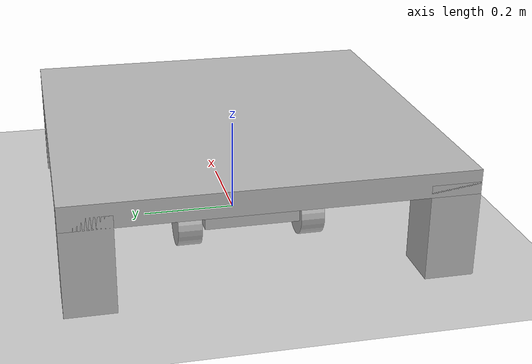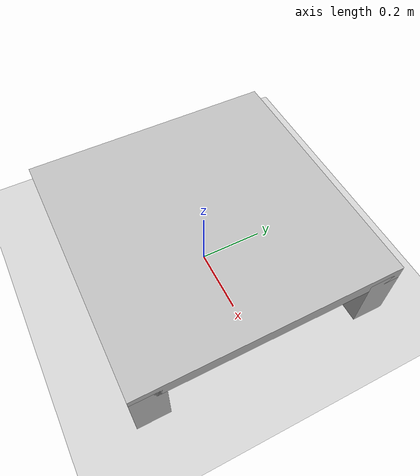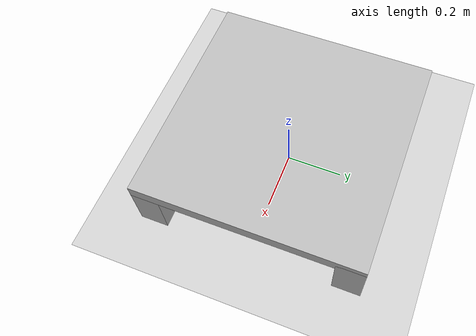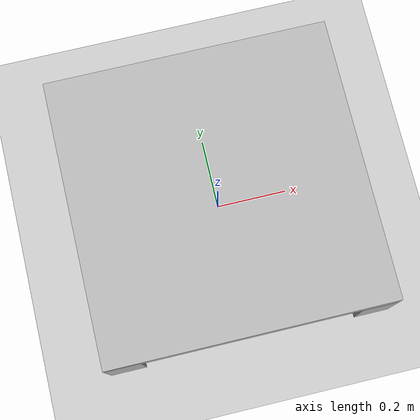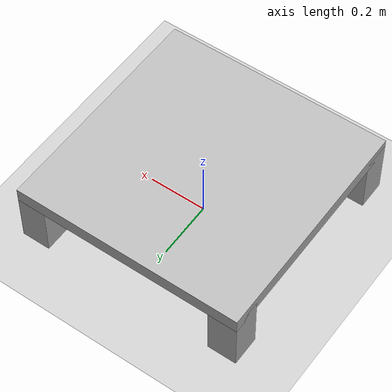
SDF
<?xml version="1.0" ?>
<sdf version="1.5">
	<world name="warehouse">

	<!-- A global light source -->
		<include>
			<uri>model://sun</uri>
		</include>
		<!-- A ground plane -->
		<include>
			<uri>model://ground_plane</uri>
		</include>

		<model name="shelf">
			<link name='body'>
           		<pose>0 0 0.2 0 0 0</pose>
		        <collision name='collision'>
		         	<geometry>
		           		<box>
		              		<size>.8 .8 .05</size>
		            		</box>
		          	</geometry>
		        	</collision>

		        <visual name='visual'>
		        		<geometry>
		            		<box>
		              		<size>.8 .8 .05</size>
		            		</box>
		          	</geometry>
		        </visual>
			</link>
			<link name="leg_1">
            <pose>0.35 0.35 0.1 0 0 0</pose>
		        <collision name='collision'>
		         	<geometry>
		           		<box>
		              		<size>.1 .1 0.20</size>
		            		</box>
		          	</geometry>
		        	</collision>
		        <visual name='visual'>
		        		<geometry>
		            		<box>
		              		<size>.1 .1 0.20</size>
		            		</box>
		          	</geometry>
		        </visual>
			</link>
            <link name="leg_2">
            <pose>-0.35 0.35 0.1 0 0 0</pose>
		        <collision name='collision'>
		         	<geometry>
		           		<box>
		              		<size>.1 .1 0.20</size>
		            		</box>
		          	</geometry>
		        	</collision>

		        <visual name='visual'>
		        		<geometry>
		            		<box>
		              		<size>.1 .1 0.20</size>
		            		</box>
		          	</geometry>
		        </visual>
			</link>
            <link name="leg_3">
            <pose>0.35 -0.35 0.1 0 0 0</pose>
		        <collision name='collision'>
		         	<geometry>
		           		<box>
		              		<size>.1 .1 0.20</size>
		            		</box>
		          	</geometry>
		        	</collision>
		        <visual name='visual'>
		        		<geometry>
		            		<box>
		              		<size>.1 .1 0.20</size>
		            		</box>
		          	</geometry>
		        </visual>
			</link>
            <link name="leg_4">
            <pose>-0.35 -0.35 0.1 0 0 0</pose>
		        <collision name='collision'>
		         	<geometry>
		           		<box>
		              		<size>.1 .1 0.20</size>
		            		</box>
		          	</geometry>
		        	</collision>
		        <visual name='visual'>
		        		<geometry>
		            		<box>
		              		<size>.1 .1 0.20</size>
		            		</box>
		          	</geometry>
		        </visual>
			</link>
            <joint type="fixed" name="leg_1_joint">
        			<pose>0 0 0 0 0 0</pose>
        			<child>leg_1</child>
        			<parent>body</parent>
                </joint>
                <joint type="fixed" name="leg_2_joint">
        			<pose>0 0 0 0 0 0</pose>
        			<child>leg_2</child>
        			<parent>body</parent>
                </joint>
                <joint type="fixed" name="leg_3_joint">
        			<pose>0 0 0 0 0 0</pose>
        			<child>leg_3</child>
        			<parent>body</parent>
                </joint>
                <joint type="fixed" name="leg_4_joint">
        			<pose>0 0 0 0 0 0</pose>
        			<child>leg_4</child>
        			<parent>body</parent>
                </joint>
</model>

<model name="kiva">
			<static>false</static>
			<link name='chassis'>
           		<pose>0 0 .1 0 0 0</pose>
		        <collision name='collision'>
		         	<geometry>
		           		<box>
		              		<size>.4 .2 .1</size>
		            		</box>
		          	</geometry>
		        	</collision>

		        <visual name='visual'>
		        		<geometry>
		            		<box>
		              		<size>.4 .2 .1</size>
		            		</box>
		          	</geometry>
		        </visual>
          	</link>
          	<link name="left_front_wheel">
        			<pose>0.15 0.13 0.05 0 1.5707 1.5707</pose>
        			<collision name="collision">
          			<geometry>
            				<cylinder>
              				<radius>.05</radius>
              				<length>.05</length>
            				</cylinder>
          			</geometry>
        			</collision>
        			<visual name="visual">
          			<geometry>
            				<cylinder>
              				<radius>.05</radius>
              				<length>.05</length>
            				</cylinder>
          			</geometry>
        			</visual>
      		</link>
      		<link name="left_back_wheel">
        			<pose>-0.15 0.13 0.05 0 1.5707 1.5707</pose>
        			<collision name="collision">
          			<geometry>
            				<cylinder>
              				<radius>.05</radius>
              				<length>.05</length>
            				</cylinder>
          			</geometry>
        			</collision>
        			<visual name="visual">
          			<geometry>
            				<cylinder>
              				<radius>.05</radius>
              				<length>.05</length>
            				</cylinder>
          			</geometry>
        			</visual>
      		</link>
      		<link name="right_front_wheel">
        			<pose>0.15 -0.13 0.05 0 1.5707 1.5707</pose>
        			<collision name="collision">
          			<geometry>
            				<cylinder>
              				<radius>.05</radius>
              				<length>.05</length>
            				</cylinder>
          			</geometry>
        			</collision>
        			<visual name="visual">
          			<geometry>
            				<cylinder>
              				<radius>.05</radius>
              				<length>.05</length>
            				</cylinder>
          			</geometry>
        			</visual>
      		</link>
      		<link name="right_back_wheel">
        			<pose>-0.15 -0.13 0.05 0 1.5707 1.5707</pose>
        			<collision name="collision">
          			<geometry>
            				<cylinder>
              				<radius>.05</radius>
              				<length>.05</length>
           				</cylinder>
          			</geometry>
        			</collision>
        			<visual name="visual">
          			<geometry>
            				<cylinder>
              				<radius>.05</radius>
              				<length>.05</length>
            				</cylinder>
          			</geometry>
       			</visual>
      		</link>
      		<link name="tower">
      			<visual name="tower">
        				<pose>0.00 0.00 0.15 0 0 0</pose>
        				<geometry>
          				<box>
            					<size>0.09 0.09 0.02</size>
          				</box>
        				</geometry>
      			</visual>
       			<collision name="tower">
        				<pose>0.00 0.00 0.16 0 0 0</pose>
        				<geometry>
          				<box>
            					<size>0.09 0.09 0.02</size>
          				</box>
        				</geometry>
      			</collision>
      			<visual name="tower_plate">
        				<pose>0 0 0.165 0 0 0</pose>
        				<geometry>
          				<cylinder>
            					<length>0.01</length>
            					<radius>0.2</radius>
          				</cylinder>
        				</geometry>
      			</visual>
      			<collision name="tower_plate">
        				<pose>0 0 0.165 0 0 0</pose>
        				<geometry>
          				<cylinder>
            					<length>0.01</length>
            					<radius>0.2</radius>
          				</cylinder>
        				</geometry>
      			</collision>
    			</link>
      		<joint type="revolute" name="left_front_wheel_hinge">
        			<pose>0 0 -0.03 0 0 0</pose>
        			<child>left_front_wheel</child>
        			<parent>chassis</parent>
        			<axis>
          			<xyz>0 0 1</xyz>
       			</axis>
      		</joint>
			<joint type="revolute" name="left_back_wheel_hinge">
        			<pose>0 0 -0.03 0 0 0</pose>
        			<child>left_back_wheel</child>
        			<parent>chassis</parent>
        			<axis>
          			<xyz>0 0 1</xyz>
       			</axis>
      		</joint>
      		<joint type="revolute" name="right_front_wheel_hinge">
        			<pose>0 0 0.03 0 0 0</pose>
        			<child>right_front_wheel</child>
        			<parent>chassis</parent>
        			<axis>
          			<xyz>0 0 1</xyz>
        			</axis>
      		</joint>
      		<joint type="revolute" name="right_back_wheel_hinge">
        			<pose>0 0 0.03 0 0 0</pose>
        			<child>right_back_wheel</child>
        			<parent>chassis</parent>
        			<axis>
          			<xyz>0 0 1</xyz>
        			</axis>
      		</joint>
      		<joint type="fixed" name="tower_body">
        			<pose>0 0 0 0 0 0</pose>
        			<child>tower</child>
        			<parent>chassis</parent>
      		</joint>
      		<joint type="fixed" name="tower_head">
        			<pose>0 0 0 0 0 0</pose>
        			<child>tower_plate</child>
        			<parent>tower</parent>
      		</joint>
            <plugin name="kiva_plugin" filename="libkiva_plugin.so">
                <dist>1.0</dist>
            </plugin>
		</model>
	</world>
</sdf>
